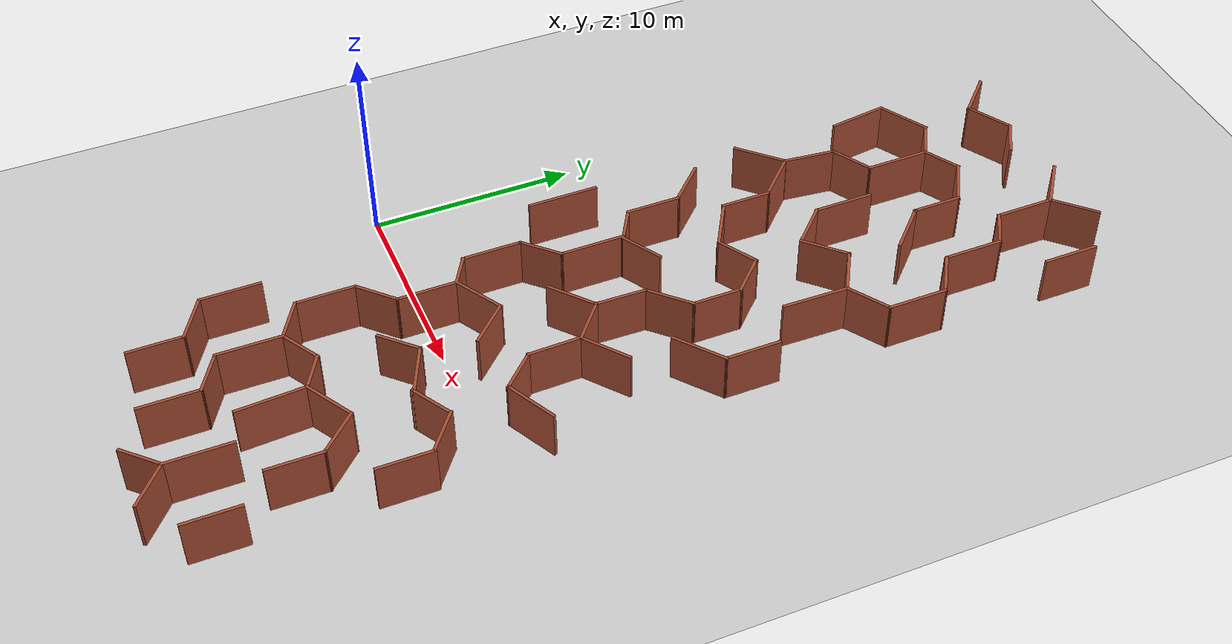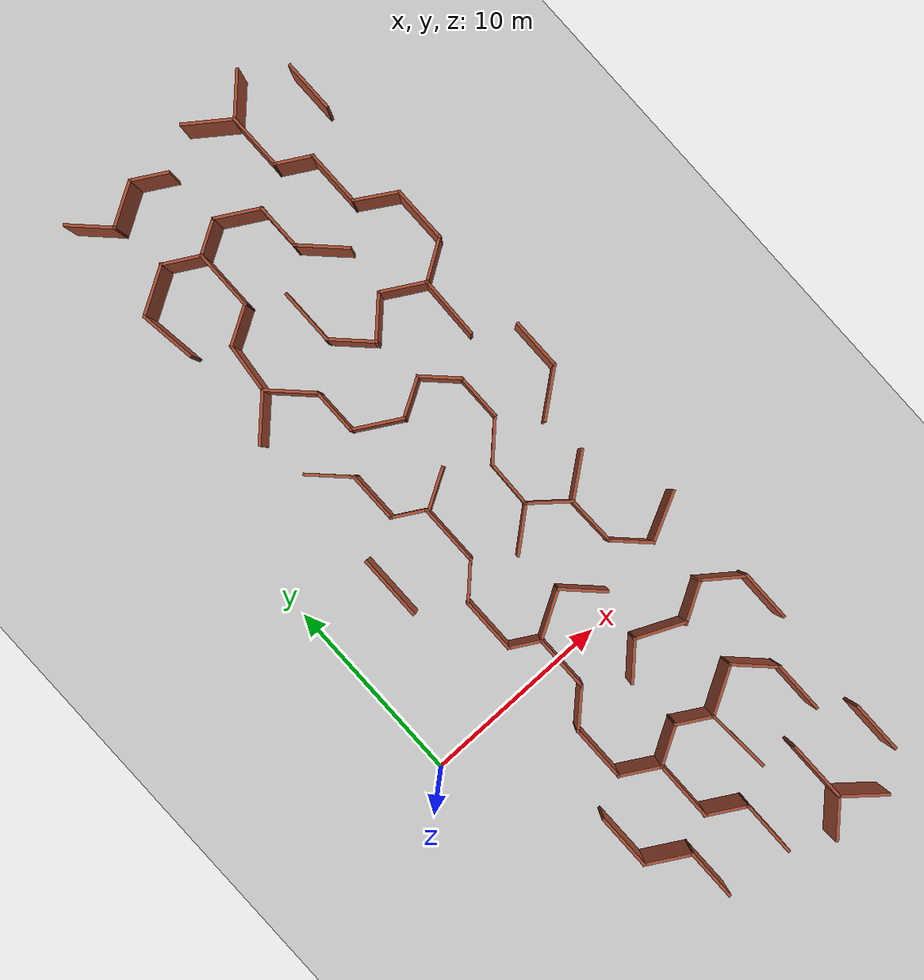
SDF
<sdf version="1.6">
 <world name="default">
  <model name="maze_rect_3">
   <pose>4e-06 -9.9e-05 0 0 -0 1.57001</pose>
   <link name="Wall_154">
    <collision name="Wall_154_Collision">
     <geometry><box><size>2.75 0.15 2.5</size></box></geometry>
     <pose>0 0 1.25 0 -0 0</pose>
    </collision>
    <visual name="Wall_154_Visual">
     <pose>0 0 1.25 0 -0 0</pose>
     <geometry><box><size>2.75 0.15 2.5</size></box></geometry>
     <material>
      <script><uri>file://media/materials/scripts/gazebo.material</uri><name>Gazebo/Bricks</name></script>
      <ambient>1 1 1 1</ambient>
     </material>
     <meta><layer>0</layer></meta>
    </visual>
    <pose>28.4894 -17.2964 0 0 -0 3.14159</pose>
   </link>
   <link name="Wall_158">
    <collision name="Wall_158_Collision">
     <geometry><box><size>3 0.15 2.5</size></box></geometry>
     <pose>0 0 1.25 0 -0 0</pose>
    </collision>
    <visual name="Wall_158_Visual">
     <pose>0 0 1.25 0 -0 0</pose>
     <geometry><box><size>3 0.15 2.5</size></box></geometry>
     <material>
      <script><uri>file://media/materials/scripts/gazebo.material</uri><name>Gazebo/Bricks</name></script>
      <ambient>1 1 1 1</ambient>
     </material>
     <meta><layer>0</layer></meta>
    </visual>
    <pose>20.4527 -17.1394 0 0 -0 3.14159</pose>
   </link>
   <link name="Wall_162">
    <collision name="Wall_162_Collision">
     <geometry><box><size>2.75 0.15 2.5</size></box></geometry>
     <pose>0 0 1.25 0 -0 0</pose>
    </collision>
    <visual name="Wall_162_Visual">
     <pose>0 0 1.25 0 -0 0</pose>
     <geometry><box><size>2.75 0.15 2.5</size></box></geometry>
     <material>
      <script><uri>file://media/materials/scripts/gazebo.material</uri><name>Gazebo/Bricks</name></script>
      <ambient>1 1 1 1</ambient>
     </material>
     <meta><layer>0</layer></meta>
    </visual>
    <pose>12.1578 -17.1394 0 0 -0 3.14159</pose>
   </link>
   <link name="Wall_172">
    <collision name="Wall_172_Collision">
     <geometry><box><size>2.82454 0.15 2.5</size></box></geometry>
     <pose>0 0 1.25 0 -0 0</pose>
    </collision>
    <visual name="Wall_172_Visual">
     <pose>0 0 1.25 0 -0 0</pose>
     <geometry><box><size>2.82454 0.15 2.5</size></box></geometry>
     <material>
      <script><uri>file://media/materials/scripts/gazebo.material</uri><name>Gazebo/Bricks</name></script>
      <ambient>1 1 1 1</ambient>
     </material>
     <meta><layer>0</layer></meta>
    </visual>
    <pose>10.0301 -16.0891 0 0 -0 -0.90341</pose>
   </link>
   <link name="Wall_174">
    <collision name="Wall_174_Collision">
     <geometry><box><size>3 0.15 2.5</size></box></geometry>
     <pose>0 0 1.25 0 -0 0</pose>
    </collision>
    <visual name="Wall_174_Visual">
     <pose>0 0 1.25 0 -0 0</pose>
     <geometry><box><size>3 0.15 2.5</size></box></geometry>
     <material>
      <script><uri>file://media/materials/scripts/gazebo.material</uri><name>Gazebo/Bricks</name></script>
      <ambient>1 1 1 1</ambient>
     </material>
     <meta><layer>0</layer></meta>
    </visual>
    <pose>20.4205 -9.90743 0 0 -0 3.14159</pose>
   </link>
   <link name="Wall_175">
    <collision name="Wall_175_Collision">
     <geometry><box><size>2.5 0.15 2.5</size></box></geometry>
     <pose>0 0 1.25 0 -0 0</pose>
    </collision>
    <visual name="Wall_175_Visual">
     <pose>0 0 1.25 0 -0 0</pose>
     <geometry><box><size>2.5 0.15 2.5</size></box></geometry>
     <material>
      <script><uri>file://media/materials/scripts/gazebo.material</uri><name>Gazebo/Bricks</name></script>
      <ambient>1 1 1 1</ambient>
     </material>
     <meta><layer>0</layer></meta>
    </visual>
    <pose>18.1647 -10.7383 0 0 -0 -2.35619</pose>
   </link>
   <link name="Wall_176">
    <collision name="Wall_176_Collision">
     <geometry><box><size>2.5 0.15 2.5</size></box></geometry>
     <pose>0 0 1.25 0 -0 0</pose>
    </collision>
    <visual name="Wall_176_Visual">
     <pose>0 0 1.25 0 -0 0</pose>
     <geometry><box><size>2.5 0.15 2.5</size></box></geometry>
     <material>
      <script><uri>file://media/materials/scripts/gazebo.material</uri><name>Gazebo/Bricks</name></script>
      <ambient>1 1 1 1</ambient>
     </material>
     <meta><layer>0</layer></meta>
    </visual>
    <pose>18.1647 -12.4 0 0 -0 -0.785398</pose>
   </link>
   <link name="Wall_177">
    <collision name="Wall_177_Collision">
     <geometry><box><size>2.5 0.15 2.5</size></box></geometry>
     <pose>0 0 1.25 0 -0 0</pose>
    </collision>
    <visual name="Wall_177_Visual">
     <pose>0 0 1.25 0 -0 0</pose>
     <geometry><box><size>2.5 0.15 2.5</size></box></geometry>
     <material>
      <script><uri>file://media/materials/scripts/gazebo.material</uri><name>Gazebo/Bricks</name></script>
      <ambient>1 1 1 1</ambient>
     </material>
     <meta><layer>0</layer></meta>
    </visual>
    <pose>18.408 -14.2484 0 0 -0 -2.0944</pose>
   </link>
   <link name="Wall_178">
    <collision name="Wall_178_Collision">
     <geometry><box><size>2.37866 0.15 2.5</size></box></geometry>
     <pose>0 0 1.25 0 -0 0</pose>
    </collision>
    <visual name="Wall_178_Visual">
     <pose>0 0 1.25 0 -0 0</pose>
     <geometry><box><size>2.37866 0.15 2.5</size></box></geometry>
     <material>
      <script><uri>file://media/materials/scripts/gazebo.material</uri><name>Gazebo/Bricks</name></script>
      <ambient>1 1 1 1</ambient>
     </material>
     <meta><layer>0</layer></meta>
    </visual>
    <pose>18.4241 -16.2027 0 0 -0 -0.998415</pose>
   </link>
   <link name="Wall_180">
    <collision name="Wall_180_Collision">
     <geometry><box><size>3.32014 0.15 2.5</size></box></geometry>
     <pose>0 0 1.25 0 -0 0</pose>
    </collision>
    <visual name="Wall_180_Visual">
     <pose>0 0 1.25 0 -0 0</pose>
     <geometry><box><size>3.32014 0.15 2.5</size></box></geometry>
     <material>
      <script><uri>file://media/materials/scripts/gazebo.material</uri><name>Gazebo/Bricks</name></script>
      <ambient>1 1 1 1</ambient>
     </material>
     <meta><layer>0</layer></meta>
    </visual>
    <pose>16.2358 -15.2317 0 0 -0 -0.021629</pose>
   </link>
   <link name="Wall_182">
    <collision name="Wall_182_Collision">
     <geometry><box><size>2.62796 0.15 2.5</size></box></geometry>
     <pose>0 0 1.25 0 -0 0</pose>
    </collision>
    <visual name="Wall_182_Visual">
     <pose>0 0 1.25 0 -0 0</pose>
     <geometry><box><size>2.62796 0.15 2.5</size></box></geometry>
     <material>
      <script><uri>file://media/materials/scripts/gazebo.material</uri><name>Gazebo/Bricks</name></script>
      <ambient>1 1 1 1</ambient>
     </material>
     <meta><layer>0</layer></meta>
    </visual>
    <pose>6.07983 -10.7544 0 0 -0 -0.877305</pose>
   </link>
   <link name="Wall_183">
    <collision name="Wall_183_Collision">
     <geometry><box><size>2.3979 0.15 2.5</size></box></geometry>
     <pose>0 0 1.25 0 -0 0</pose>
    </collision>
    <visual name="Wall_183_Visual">
     <pose>0 0 1.25 0 -0 0</pose>
     <geometry><box><size>2.3979 0.15 2.5</size></box></geometry>
     <material>
      <script><uri>file://media/materials/scripts/gazebo.material</uri><name>Gazebo/Bricks</name></script>
      <ambient>1 1 1 1</ambient>
     </material>
     <meta><layer>0</layer></meta>
    </visual>
    <pose>6.17943 -12.5741 0 0 -0 -2.26074</pose>
   </link>
   <link name="Wall_184">
    <collision name="Wall_184_Collision">
     <geometry><box><size>2.66716 0.15 2.5</size></box></geometry>
     <pose>0 0 1.25 0 -0 0</pose>
    </collision>
    <visual name="Wall_184_Visual">
     <pose>0 0 1.25 0 -0 0</pose>
     <geometry><box><size>2.66716 0.15 2.5</size></box></geometry>
     <material>
      <script><uri>file://media/materials/scripts/gazebo.material</uri><name>Gazebo/Bricks</name></script>
      <ambient>1 1 1 1</ambient>
     </material>
     <meta><layer>0</layer></meta>
    </visual>
    <pose>4.18279 -13.4697 0 0 -0 -3.11875</pose>
   </link>
   <link name="Wall_185">
    <collision name="Wall_185_Collision">
     <geometry><box><size>2.25 0.15 2.5</size></box></geometry>
     <pose>0 0 1.25 0 -0 0</pose>
    </collision>
    <visual name="Wall_185_Visual">
     <pose>0 0 1.25 0 -0 0</pose>
     <geometry><box><size>2.25 0.15 2.5</size></box></geometry>
     <material>
      <script><uri>file://media/materials/scripts/gazebo.material</uri><name>Gazebo/Bricks</name></script>
      <ambient>1 1 1 1</ambient>
     </material>
     <meta><layer>0</layer></meta>
    </visual>
    <pose>2.18208 -14.241 0 0 -0 -2.35619</pose>
   </link>
   <link name="Wall_186">
    <collision name="Wall_186_Collision">
     <geometry><box><size>2.76205 0.15 2.5</size></box></geometry>
     <pose>0 0 1.25 0 -0 0</pose>
    </collision>
    <visual name="Wall_186_Visual">
     <pose>0 0 1.25 0 -0 0</pose>
     <geometry><box><size>2.76205 0.15 2.5</size></box></geometry>
     <material>
      <script><uri>file://media/materials/scripts/gazebo.material</uri><name>Gazebo/Bricks</name></script>
      <ambient>1 1 1 1</ambient>
     </material>
     <meta><layer>0</layer></meta>
    </visual>
    <pose>2.02718 -16.1498 0 0 -0 -1.10416</pose>
   </link>
   <link name="Wall_188">
    <collision name="Wall_188_Collision">
     <geometry><box><size>2.64871 0.15 2.5</size></box></geometry>
     <pose>0 0 1.25 0 -0 0</pose>
    </collision>
    <visual name="Wall_188_Visual">
     <pose>0 0 1.25 0 -0 0</pose>
     <geometry><box><size>2.64871 0.15 2.5</size></box></geometry>
     <material>
      <script><uri>file://media/materials/scripts/gazebo.material</uri><name>Gazebo/Bricks</name></script>
      <ambient>1 1 1 1</ambient>
     </material>
     <meta><layer>0</layer></meta>
    </visual>
    <pose>6.21084 -14.425 0 0 -0 2.23465</pose>
   </link>
   <link name="Wall_190">
    <collision name="Wall_190_Collision">
     <geometry><box><size>2.75 0.15 2.5</size></box></geometry>
     <pose>0 0 1.25 0 -0 0</pose>
    </collision>
    <visual name="Wall_190_Visual">
     <pose>0 0 1.25 0 -0 0</pose>
     <geometry><box><size>2.75 0.15 2.5</size></box></geometry>
     <material>
      <script><uri>file://media/materials/scripts/gazebo.material</uri><name>Gazebo/Bricks</name></script>
      <ambient>1 1 1 1</ambient>
     </material>
     <meta><layer>0</layer></meta>
    </visual>
    <pose>18.3212 -5.11347 0 0 -0 -0.785398</pose>
   </link>
   <link name="Wall_191">
    <collision name="Wall_191_Collision">
     <geometry><box><size>2.75 0.15 2.5</size></box></geometry>
     <pose>0 0 1.25 0 -0 0</pose>
    </collision>
    <visual name="Wall_191_Visual">
     <pose>0 0 1.25 0 -0 0</pose>
     <geometry><box><size>2.75 0.15 2.5</size></box></geometry>
     <material>
      <script><uri>file://media/materials/scripts/gazebo.material</uri><name>Gazebo/Bricks</name></script>
      <ambient>1 1 1 1</ambient>
     </material>
     <meta><layer>0</layer></meta>
    </visual>
    <pose>18.3212 -6.95194 0 0 -0 -2.35619</pose>
   </link>
   <link name="Wall_192">
    <collision name="Wall_192_Collision">
     <geometry><box><size>2.5 0.15 2.5</size></box></geometry>
     <pose>0 0 1.25 0 -0 0</pose>
    </collision>
    <visual name="Wall_192_Visual">
     <pose>0 0 1.25 0 -0 0</pose>
     <geometry><box><size>2.5 0.15 2.5</size></box></geometry>
     <material>
      <script><uri>file://media/materials/scripts/gazebo.material</uri><name>Gazebo/Bricks</name></script>
      <ambient>1 1 1 1</ambient>
     </material>
     <meta><layer>0</layer></meta>
    </visual>
    <pose>16.2269 -7.87118 0 0 -0 3.14159</pose>
   </link>
   <link name="Wall_193">
    <collision name="Wall_193_Collision">
     <geometry><box><size>2.75 0.15 2.5</size></box></geometry>
     <pose>0 0 1.25 0 -0 0</pose>
    </collision>
    <visual name="Wall_193_Visual">
     <pose>0 0 1.25 0 -0 0</pose>
     <geometry><box><size>2.75 0.15 2.5</size></box></geometry>
     <material>
      <script><uri>file://media/materials/scripts/gazebo.material</uri><name>Gazebo/Bricks</name></script>
      <ambient>1 1 1 1</ambient>
     </material>
     <meta><layer>0</layer></meta>
    </visual>
    <pose>14.4019 -8.99702 0 0 -0 -2.0944</pose>
   </link>
   <link name="Wall_194">
    <collision name="Wall_194_Collision">
     <geometry><box><size>2.25 0.15 2.5</size></box></geometry>
     <pose>0 0 1.25 0 -0 0</pose>
    </collision>
    <visual name="Wall_194_Visual">
     <pose>0 0 1.25 0 -0 0</pose>
     <geometry><box><size>2.25 0.15 2.5</size></box></geometry>
     <material>
      <script><uri>file://media/materials/scripts/gazebo.material</uri><name>Gazebo/Bricks</name></script>
      <ambient>1 1 1 1</ambient>
     </material>
     <meta><layer>0</layer></meta>
    </visual>
    <pose>14.2769 -11.0322 0 0 -0 -1.0472</pose>
   </link>
   <link name="Wall_195">
    <collision name="Wall_195_Collision">
     <geometry><box><size>2.25 0.15 2.5</size></box></geometry>
     <pose>0 0 1.25 0 -0 0</pose>
    </collision>
    <visual name="Wall_195_Visual">
     <pose>0 0 1.25 0 -0 0</pose>
     <geometry><box><size>2.25 0.15 2.5</size></box></geometry>
     <material>
      <script><uri>file://media/materials/scripts/gazebo.material</uri><name>Gazebo/Bricks</name></script>
      <ambient>1 1 1 1</ambient>
     </material>
     <meta><layer>0</layer></meta>
    </visual>
    <pose>14.0595 -12.684 0 0 -0 -2.35619</pose>
   </link>
   <link name="Wall_196">
    <collision name="Wall_196_Collision">
     <geometry><box><size>2.5 0.15 2.5</size></box></geometry>
     <pose>0 0 1.25 0 -0 0</pose>
    </collision>
    <visual name="Wall_196_Visual">
     <pose>0 0 1.25 0 -0 0</pose>
     <geometry><box><size>2.5 0.15 2.5</size></box></geometry>
     <material>
      <script><uri>file://media/materials/scripts/gazebo.material</uri><name>Gazebo/Bricks</name></script>
      <ambient>1 1 1 1</ambient>
     </material>
     <meta><layer>0</layer></meta>
    </visual>
    <pose>12.142 -13.4264 0 0 -0 3.14159</pose>
   </link>
   <link name="Wall_197">
    <collision name="Wall_197_Collision">
     <geometry><box><size>2.5 0.15 2.5</size></box></geometry>
     <pose>0 0 1.25 0 -0 0</pose>
    </collision>
    <visual name="Wall_197_Visual">
     <pose>0 0 1.25 0 -0 0</pose>
     <geometry><box><size>2.5 0.15 2.5</size></box></geometry>
     <material>
      <script><uri>file://media/materials/scripts/gazebo.material</uri><name>Gazebo/Bricks</name></script>
      <ambient>1 1 1 1</ambient>
     </material>
     <meta><layer>0</layer></meta>
    </visual>
    <pose>10.1362 -12.5956 0 0 -0 2.35619</pose>
   </link>
   <link name="Wall_198">
    <collision name="Wall_198_Collision">
     <geometry><box><size>2.58418 0.15 2.5</size></box></geometry>
     <pose>0 0 1.25 0 -0 0</pose>
    </collision>
    <visual name="Wall_198_Visual">
     <pose>0 0 1.25 0 -0 0</pose>
     <geometry><box><size>2.58418 0.15 2.5</size></box></geometry>
     <material>
      <script><uri>file://media/materials/scripts/gazebo.material</uri><name>Gazebo/Bricks</name></script>
      <ambient>1 1 1 1</ambient>
     </material>
     <meta><layer>0</layer></meta>
    </visual>
    <pose>8.08856 -11.736 0 0 -0 3.11797</pose>
   </link>
   <link name="Wall_2">
    <collision name="Wall_2_Collision">
     <geometry><box><size>2.75 0.15 2.5</size></box></geometry>
     <pose>0 0 1.25 0 -0 0</pose>
    </collision>
    <visual name="Wall_2_Visual">
     <pose>0 0 1.25 0 -0 0</pose>
     <geometry><box><size>2.75 0.15 2.5</size></box></geometry>
     <material>
      <script><uri>file://media/materials/scripts/gazebo.material</uri><name>Gazebo/Bricks</name></script>
      <ambient>1 1 1 1</ambient>
     </material>
     <meta><layer>0</layer></meta>
    </visual>
    <pose>-3.97506 -17.2253 0 0 -0 3.14159</pose>
   </link>
   <link name="Wall_200">
    <collision name="Wall_200_Collision">
     <geometry><box><size>2.75 0.15 2.5</size></box></geometry>
     <pose>0 0 1.25 0 -0 0</pose>
    </collision>
    <visual name="Wall_200_Visual">
     <pose>0 0 1.25 0 -0 0</pose>
     <geometry><box><size>2.75 0.15 2.5</size></box></geometry>
     <material>
      <script><uri>file://media/materials/scripts/gazebo.material</uri><name>Gazebo/Bricks</name></script>
      <ambient>1 1 1 1</ambient>
     </material>
     <meta><layer>0</layer></meta>
    </visual>
    <pose>22.3945 -12.6912 0 0 -0 0.785398</pose>
   </link>
   <link name="Wall_201">
    <collision name="Wall_201_Collision">
     <geometry><box><size>2.5 0.15 2.5</size></box></geometry>
     <pose>0 0 1.25 0 -0 0</pose>
    </collision>
    <visual name="Wall_201_Visual">
     <pose>0 0 1.25 0 -0 0</pose>
     <geometry><box><size>2.5 0.15 2.5</size></box></geometry>
     <material>
      <script><uri>file://media/materials/scripts/gazebo.material</uri><name>Gazebo/Bricks</name></script>
      <ambient>1 1 1 1</ambient>
     </material>
     <meta><layer>0</layer></meta>
    </visual>
    <pose>24.4887 -11.772 0 0 -0 0</pose>
   </link>
   <link name="Wall_202">
    <collision name="Wall_202_Collision">
     <geometry><box><size>2.5 0.15 2.5</size></box></geometry>
     <pose>0 0 1.25 0 -0 0</pose>
    </collision>
    <visual name="Wall_202_Visual">
     <pose>0 0 1.25 0 -0 0</pose>
     <geometry><box><size>2.5 0.15 2.5</size></box></geometry>
     <material>
      <script><uri>file://media/materials/scripts/gazebo.material</uri><name>Gazebo/Bricks</name></script>
      <ambient>1 1 1 1</ambient>
     </material>
     <meta><layer>0</layer></meta>
    </visual>
    <pose>26.2512 -10.7544 0 0 -0 1.0472</pose>
   </link>
   <link name="Wall_203">
    <collision name="Wall_203_Collision">
     <geometry><box><size>2 0.15 2.5</size></box></geometry>
     <pose>0 0 1.25 0 -0 0</pose>
    </collision>
    <visual name="Wall_203_Visual">
     <pose>0 0 1.25 0 -0 0</pose>
     <geometry><box><size>2 0.15 2.5</size></box></geometry>
     <material>
      <script><uri>file://media/materials/scripts/gazebo.material</uri><name>Gazebo/Bricks</name></script>
      <ambient>1 1 1 1</ambient>
     </material>
     <meta><layer>0</layer></meta>
    </visual>
    <pose>26.3762 -8.93572 0 0 -0 2.0944</pose>
   </link>
   <link name="Wall_204">
    <collision name="Wall_204_Collision">
     <geometry><box><size>3.25 0.15 2.5</size></box></geometry>
     <pose>0 0 1.25 0 -0 0</pose>
    </collision>
    <visual name="Wall_204_Visual">
     <pose>0 0 1.25 0 -0 0</pose>
     <geometry><box><size>3.25 0.15 2.5</size></box></geometry>
     <material>
      <script><uri>file://media/materials/scripts/gazebo.material</uri><name>Gazebo/Bricks</name></script>
      <ambient>1 1 1 1</ambient>
     </material>
     <meta><layer>0</layer></meta>
    </visual>
    <pose>24.3637 -8.13464 0 0 -0 3.14159</pose>
   </link>
   <link name="Wall_205">
    <collision name="Wall_205_Collision">
     <geometry><box><size>2.25 0.15 2.5</size></box></geometry>
     <pose>0 0 1.25 0 -0 0</pose>
    </collision>
    <visual name="Wall_205_Visual">
     <pose>0 0 1.25 0 -0 0</pose>
     <geometry><box><size>2.25 0.15 2.5</size></box></geometry>
     <material>
      <script><uri>file://media/materials/scripts/gazebo.material</uri><name>Gazebo/Bricks</name></script>
      <ambient>1 1 1 1</ambient>
     </material>
     <meta><layer>0</layer></meta>
    </visual>
    <pose>22.2887 -7.22532 0 0 -0 2.0944</pose>
   </link>
   <link name="Wall_206">
    <collision name="Wall_206_Collision">
     <geometry><box><size>2.68915 0.15 2.5</size></box></geometry>
     <pose>0 0 1.25 0 -0 0</pose>
    </collision>
    <visual name="Wall_206_Visual">
     <pose>0 0 1.25 0 -0 0</pose>
     <geometry><box><size>2.68915 0.15 2.5</size></box></geometry>
     <material>
      <script><uri>file://media/materials/scripts/gazebo.material</uri><name>Gazebo/Bricks</name></script>
      <ambient>1 1 1 1</ambient>
     </material>
     <meta><layer>0</layer></meta>
    </visual>
    <pose>20.5021 -6.17435 0 0 -0 3.02979</pose>
   </link>
   <link name="Wall_209">
    <collision name="Wall_209_Collision">
     <geometry><box><size>2.5 0.15 2.5</size></box></geometry>
     <pose>0 0 1.25 0 -0 0</pose>
    </collision>
    <visual name="Wall_209_Visual">
     <pose>0 0 1.25 0 -0 0</pose>
     <geometry><box><size>2.5 0.15 2.5</size></box></geometry>
     <material>
      <script><uri>file://media/materials/scripts/gazebo.material</uri><name>Gazebo/Bricks</name></script>
      <ambient>1 1 1 1</ambient>
     </material>
     <meta><layer>0</layer></meta>
    </visual>
    <pose>30.4904 -14.4724 0 0 -0 2.35619</pose>
   </link>
   <link name="Wall_210">
    <collision name="Wall_210_Collision">
     <geometry><box><size>3 0.15 2.5</size></box></geometry>
     <pose>0 0 1.25 0 -0 0</pose>
    </collision>
    <visual name="Wall_210_Visual">
     <pose>0 0 1.25 0 -0 0</pose>
     <geometry><box><size>3 0.15 2.5</size></box></geometry>
     <material>
      <script><uri>file://media/materials/scripts/gazebo.material</uri><name>Gazebo/Bricks</name></script>
      <ambient>1 1 1 1</ambient>
     </material>
     <meta><layer>0</layer></meta>
    </visual>
    <pose>28.2345 -13.6415 0 0 -0 3.14159</pose>
   </link>
   <link name="Wall_211">
    <collision name="Wall_211_Collision">
     <geometry><box><size>2 0.15 2.5</size></box></geometry>
     <pose>0 0 1.25 0 -0 0</pose>
    </collision>
    <visual name="Wall_211_Visual">
     <pose>0 0 1.25 0 -0 0</pose>
     <geometry><box><size>2 0.15 2.5</size></box></geometry>
     <material>
      <script><uri>file://media/materials/scripts/gazebo.material</uri><name>Gazebo/Bricks</name></script>
      <ambient>1 1 1 1</ambient>
     </material>
     <meta><layer>0</layer></meta>
    </visual>
    <pose>26.347 -14.4426 0 0 -0 -2.0944</pose>
   </link>
   <link name="Wall_212">
    <collision name="Wall_212_Collision">
     <geometry><box><size>3 0.15 2.5</size></box></geometry>
     <pose>0 0 1.25 0 -0 0</pose>
    </collision>
    <visual name="Wall_212_Visual">
     <pose>0 0 1.25 0 -0 0</pose>
     <geometry><box><size>3 0.15 2.5</size></box></geometry>
     <material>
      <script><uri>file://media/materials/scripts/gazebo.material</uri><name>Gazebo/Bricks</name></script>
      <ambient>1 1 1 1</ambient>
     </material>
     <meta><layer>0</layer></meta>
    </visual>
    <pose>24.4595 -15.2437 0 0 -0 3.14159</pose>
   </link>
   <link name="Wall_213">
    <collision name="Wall_213_Collision">
     <geometry><box><size>2.37087 0.15 2.5</size></box></geometry>
     <pose>0 0 1.25 0 -0 0</pose>
    </collision>
    <visual name="Wall_213_Visual">
     <pose>0 0 1.25 0 -0 0</pose>
     <geometry><box><size>2.37087 0.15 2.5</size></box></geometry>
     <material>
      <script><uri>file://media/materials/scripts/gazebo.material</uri><name>Gazebo/Bricks</name></script>
      <ambient>1 1 1 1</ambient>
     </material>
     <meta><layer>0</layer></meta>
    </visual>
    <pose>22.4561 -16.1915 0 0 -0 -2.11872</pose>
   </link>
   <link name="Wall_227">
    <collision name="Wall_227_Collision">
     <geometry><box><size>2.68494 0.15 2.5</size></box></geometry>
     <pose>0 0 1.25 0 -0 0</pose>
    </collision>
    <visual name="Wall_227_Visual">
     <pose>0 0 1.25 0 -0 0</pose>
     <geometry><box><size>2.68494 0.15 2.5</size></box></geometry>
     <material>
      <script><uri>file://media/materials/scripts/gazebo.material</uri><name>Gazebo/Bricks</name></script>
      <ambient>1 1 1 1</ambient>
     </material>
     <meta><layer>0</layer></meta>
    </visual>
    <pose>30.411 -12.6209 0 0 -0 -2.20547</pose>
   </link>
   <link name="Wall_229">
    <collision name="Wall_229_Collision">
     <geometry><box><size>2.5 0.15 2.5</size></box></geometry>
     <pose>0 0 1.25 0 -0 0</pose>
    </collision>
    <visual name="Wall_229_Visual">
     <pose>0 0 1.25 0 -0 0</pose>
     <geometry><box><size>2.5 0.15 2.5</size></box></geometry>
     <material>
      <script><uri>file://media/materials/scripts/gazebo.material</uri><name>Gazebo/Bricks</name></script>
      <ambient>1 1 1 1</ambient>
     </material>
     <meta><layer>0</layer></meta>
    </visual>
    <pose>30.4838 -5.13088 0 0 -0 -2.35619</pose>
   </link>
   <link name="Wall_230">
    <collision name="Wall_230_Collision">
     <geometry><box><size>2.5 0.15 2.5</size></box></geometry>
     <pose>0 0 1.25 0 -0 0</pose>
    </collision>
    <visual name="Wall_230_Visual">
     <pose>0 0 1.25 0 -0 0</pose>
     <geometry><box><size>2.5 0.15 2.5</size></box></geometry>
     <material>
      <script><uri>file://media/materials/scripts/gazebo.material</uri><name>Gazebo/Bricks</name></script>
      <ambient>1 1 1 1</ambient>
     </material>
     <meta><layer>0</layer></meta>
    </visual>
    <pose>30.2404 -6.97931 0 0 -0 -1.0472</pose>
   </link>
   <link name="Wall_231">
    <collision name="Wall_231_Collision">
     <geometry><box><size>2 0.15 2.5</size></box></geometry>
     <pose>0 0 1.25 0 -0 0</pose>
    </collision>
    <visual name="Wall_231_Visual">
     <pose>0 0 1.25 0 -0 0</pose>
     <geometry><box><size>2 0.15 2.5</size></box></geometry>
     <material>
      <script><uri>file://media/materials/scripts/gazebo.material</uri><name>Gazebo/Bricks</name></script>
      <ambient>1 1 1 1</ambient>
     </material>
     <meta><layer>0</layer></meta>
    </visual>
    <pose>30.3654 -8.79796 0 0 -0 -2.0944</pose>
   </link>
   <link name="Wall_274">
    <collision name="Wall_274_Collision">
     <geometry><box><size>2.75 0.15 2.5</size></box></geometry>
     <pose>0 0 1.25 0 -0 0</pose>
    </collision>
    <visual name="Wall_274_Visual">
     <pose>0 0 1.25 0 -0 0</pose>
     <geometry><box><size>2.75 0.15 2.5</size></box></geometry>
     <material>
      <script><uri>file://media/materials/scripts/gazebo.material</uri><name>Gazebo/Bricks</name></script>
      <ambient>1 1 1 1</ambient>
     </material>
     <meta><layer>0</layer></meta>
    </visual>
    <pose>26.2218 -5.31751 0 0 -0 -1.0472</pose>
   </link>
   <link name="Wall_275">
    <collision name="Wall_275_Collision">
     <geometry><box><size>2.09381 0.15 2.5</size></box></geometry>
     <pose>0 0 1.25 0 -0 0</pose>
    </collision>
    <visual name="Wall_275_Visual">
     <pose>0 0 1.25 0 -0 0</pose>
     <geometry><box><size>2.09381 0.15 2.5</size></box></geometry>
     <material>
      <script><uri>file://media/materials/scripts/gazebo.material</uri><name>Gazebo/Bricks</name></script>
      <ambient>1 1 1 1</ambient>
     </material>
     <meta><layer>0</layer></meta>
    </visual>
    <pose>26.3928 -7.28899 0 0 -0 -2.0862</pose>
   </link>
   <link name="Wall_277">
    <collision name="Wall_277_Collision">
     <geometry><box><size>3.00143 0.15 2.5</size></box></geometry>
     <pose>0 0 1.25 0 -0 0</pose>
    </collision>
    <visual name="Wall_277_Visual">
     <pose>0 0 1.25 0 -0 0</pose>
     <geometry><box><size>3.00143 0.15 2.5</size></box></geometry>
     <material>
      <script><uri>file://media/materials/scripts/gazebo.material</uri><name>Gazebo/Bricks</name></script>
      <ambient>1 1 1 1</ambient>
     </material>
     <meta><layer>0</layer></meta>
    </visual>
    <pose>24.1583 -4.3781 0 0 -0 0.131135</pose>
   </link>
   <link name="Wall_380">
    <collision name="Wall_380_Collision">
     <geometry><box><size>2.25 0.15 2.5</size></box></geometry>
     <pose>0 0 1.25 0 -0 0</pose>
    </collision>
    <visual name="Wall_380_Visual">
     <pose>0 0 1.25 0 -0 0</pose>
     <geometry><box><size>2.25 0.15 2.5</size></box></geometry>
     <material>
      <script><uri>file://media/materials/scripts/gazebo.material</uri><name>Gazebo/Bricks</name></script>
      <ambient>1 1 1 1</ambient>
     </material>
     <meta><layer>0</layer></meta>
    </visual>
    <pose>10.2675 -9.00997 0 0 -0 2.0944</pose>
   </link>
   <link name="Wall_381">
    <collision name="Wall_381_Collision">
     <geometry><box><size>2 0.15 2.5</size></box></geometry>
     <pose>0 0 1.25 0 -0 0</pose>
    </collision>
    <visual name="Wall_381_Visual">
     <pose>0 0 1.25 0 -0 0</pose>
     <geometry><box><size>2 0.15 2.5</size></box></geometry>
     <material>
      <script><uri>file://media/materials/scripts/gazebo.material</uri><name>Gazebo/Bricks</name></script>
      <ambient>1 1 1 1</ambient>
     </material>
     <meta><layer>0</layer></meta>
    </visual>
    <pose>10.205 -7.29957 0 0 -0 1.0472</pose>
   </link>
   <link name="Wall_382">
    <collision name="Wall_382_Collision">
     <geometry><box><size>2.75 0.15 2.5</size></box></geometry>
     <pose>0 0 1.25 0 -0 0</pose>
    </collision>
    <visual name="Wall_382_Visual">
     <pose>0 0 1.25 0 -0 0</pose>
     <geometry><box><size>2.75 0.15 2.5</size></box></geometry>
     <material>
      <script><uri>file://media/materials/scripts/gazebo.material</uri><name>Gazebo/Bricks</name></script>
      <ambient>1 1 1 1</ambient>
     </material>
     <meta><layer>0</layer></meta>
    </visual>
    <pose>11.9675 -6.4985 0 0 -0 0</pose>
   </link>
   <link name="Wall_383">
    <collision name="Wall_383_Collision">
     <geometry><box><size>2.5 0.15 2.5</size></box></geometry>
     <pose>0 0 1.25 0 -0 0</pose>
    </collision>
    <visual name="Wall_383_Visual">
     <pose>0 0 1.25 0 -0 0</pose>
     <geometry><box><size>2.5 0.15 2.5</size></box></geometry>
     <material>
      <script><uri>file://media/materials/scripts/gazebo.material</uri><name>Gazebo/Bricks</name></script>
      <ambient>1 1 1 1</ambient>
     </material>
     <meta><layer>0</layer></meta>
    </visual>
    <pose>14.0984 -5.66765 0 0 -0 0.785398</pose>
   </link>
   <link name="Wall_388">
    <collision name="Wall_388_Collision">
     <geometry><box><size>2.5 0.15 2.5</size></box></geometry>
     <pose>0 0 1.25 0 -0 0</pose>
    </collision>
    <visual name="Wall_388_Visual">
     <pose>0 0 1.25 0 -0 0</pose>
     <geometry><box><size>2.5 0.15 2.5</size></box></geometry>
     <material>
      <script><uri>file://media/materials/scripts/gazebo.material</uri><name>Gazebo/Bricks</name></script>
      <ambient>1 1 1 1</ambient>
     </material>
     <meta><layer>0</layer></meta>
    </visual>
    <pose>2.01144 -10.9743 0 0 -0 0.785398</pose>
   </link>
   <link name="Wall_389">
    <collision name="Wall_389_Collision">
     <geometry><box><size>2.75 0.15 2.5</size></box></geometry>
     <pose>0 0 1.25 0 -0 0</pose>
    </collision>
    <visual name="Wall_389_Visual">
     <pose>0 0 1.25 0 -0 0</pose>
     <geometry><box><size>2.75 0.15 2.5</size></box></geometry>
     <material>
      <script><uri>file://media/materials/scripts/gazebo.material</uri><name>Gazebo/Bricks</name></script>
      <ambient>1 1 1 1</ambient>
     </material>
     <meta><layer>0</layer></meta>
    </visual>
    <pose>2.1923 -9.01765 0 0 -0 2.0944</pose>
   </link>
   <link name="Wall_390">
    <collision name="Wall_390_Collision">
     <geometry><box><size>1.75 0.15 2.5</size></box></geometry>
     <pose>0 0 1.25 0 -0 0</pose>
    </collision>
    <visual name="Wall_390_Visual">
     <pose>0 0 1.25 0 -0 0</pose>
     <geometry><box><size>1.75 0.15 2.5</size></box></geometry>
     <material>
      <script><uri>file://media/materials/scripts/gazebo.material</uri><name>Gazebo/Bricks</name></script>
      <ambient>1 1 1 1</ambient>
     </material>
     <meta><layer>0</layer></meta>
    </visual>
    <pose>1.9423 -7.19899 0 0 -0 1.0472</pose>
   </link>
   <link name="Wall_391">
    <collision name="Wall_391_Collision">
     <geometry><box><size>3 0.15 2.5</size></box></geometry>
     <pose>0 0 1.25 0 -0 0</pose>
    </collision>
    <visual name="Wall_391_Visual">
     <pose>0 0 1.25 0 -0 0</pose>
     <geometry><box><size>3 0.15 2.5</size></box></geometry>
     <material>
      <script><uri>file://media/materials/scripts/gazebo.material</uri><name>Gazebo/Bricks</name></script>
      <ambient>1 1 1 1</ambient>
     </material>
     <meta><layer>0</layer></meta>
    </visual>
    <pose>3.76729 -6.50617 0 0 -0 0</pose>
   </link>
   <link name="Wall_392">
    <collision name="Wall_392_Collision">
     <geometry><box><size>2.25 0.15 2.5</size></box></geometry>
     <pose>0 0 1.25 0 -0 0</pose>
    </collision>
    <visual name="Wall_392_Visual">
     <pose>0 0 1.25 0 -0 0</pose>
     <geometry><box><size>2.25 0.15 2.5</size></box></geometry>
     <material>
      <script><uri>file://media/materials/scripts/gazebo.material</uri><name>Gazebo/Bricks</name></script>
      <ambient>1 1 1 1</ambient>
     </material>
     <meta><layer>0</layer></meta>
    </visual>
    <pose>5.93476 -7.24864 0 0 -0 -0.785398</pose>
   </link>
   <link name="Wall_393">
    <collision name="Wall_393_Collision">
     <geometry><box><size>3.25 0.15 2.5</size></box></geometry>
     <pose>0 0 1.25 0 -0 0</pose>
    </collision>
    <visual name="Wall_393_Visual">
     <pose>0 0 1.25 0 -0 0</pose>
     <geometry><box><size>3.25 0.15 2.5</size></box></geometry>
     <material>
      <script><uri>file://media/materials/scripts/gazebo.material</uri><name>Gazebo/Bricks</name></script>
      <ambient>1 1 1 1</ambient>
     </material>
     <meta><layer>0</layer></meta>
    </visual>
    <pose>8.22722 -7.9911 0 0 -0 0</pose>
   </link>
   <link name="Wall_436">
    <collision name="Wall_436_Collision">
     <geometry><box><size>2.25 0.15 2.5</size></box></geometry>
     <pose>0 0 1.25 0 -0 0</pose>
    </collision>
    <visual name="Wall_436_Visual">
     <pose>0 0 1.25 0 -0 0</pose>
     <geometry><box><size>2.25 0.15 2.5</size></box></geometry>
     <material>
      <script><uri>file://media/materials/scripts/gazebo.material</uri><name>Gazebo/Bricks</name></script>
      <ambient>1 1 1 1</ambient>
     </material>
     <meta><layer>0</layer></meta>
    </visual>
    <pose>-2.08521 -10.5143 0 0 -0 -0.785398</pose>
   </link>
   <link name="Wall_437">
    <collision name="Wall_437_Collision">
     <geometry><box><size>2.71683 0.15 2.5</size></box></geometry>
     <pose>0 0 1.25 0 -0 0</pose>
    </collision>
    <visual name="Wall_437_Visual">
     <pose>0 0 1.25 0 -0 0</pose>
     <geometry><box><size>2.71683 0.15 2.5</size></box></geometry>
     <material>
      <script><uri>file://media/materials/scripts/gazebo.material</uri><name>Gazebo/Bricks</name></script>
      <ambient>1 1 1 1</ambient>
     </material>
     <meta><layer>0</layer></meta>
    </visual>
    <pose>-1.86907 -12.4273 0 0 -0 -1.99335</pose>
   </link>
   <link name="Wall_438">
    <collision name="Wall_438_Collision">
     <geometry><box><size>2.25 0.15 2.5</size></box></geometry>
     <pose>0 0 1.25 0 -0 0</pose>
    </collision>
    <visual name="Wall_438_Visual">
     <pose>0 0 1.25 0 -0 0</pose>
     <geometry><box><size>2.25 0.15 2.5</size></box></geometry>
     <material>
      <script><uri>file://media/materials/scripts/gazebo.material</uri><name>Gazebo/Bricks</name></script>
      <ambient>1 1 1 1</ambient>
     </material>
     <meta><layer>0</layer></meta>
    </visual>
    <pose>-1.93157 -14.446 0 0 -0 -1.0472</pose>
   </link>
   <link name="Wall_439">
    <collision name="Wall_439_Collision">
     <geometry><box><size>2.34599 0.15 2.5</size></box></geometry>
     <pose>0 0 1.25 0 -0 0</pose>
    </collision>
    <visual name="Wall_439_Visual">
     <pose>0 0 1.25 0 -0 0</pose>
     <geometry><box><size>2.34599 0.15 2.5</size></box></geometry>
     <material>
      <script><uri>file://media/materials/scripts/gazebo.material</uri><name>Gazebo/Bricks</name></script>
      <ambient>1 1 1 1</ambient>
     </material>
     <meta><layer>0</layer></meta>
    </visual>
    <pose>-2.01023 -16.2903 0 0 -0 -2.22119</pose>
   </link>
   <link name="Wall_441">
    <collision name="Wall_441_Collision">
     <geometry><box><size>2.75 0.15 2.5</size></box></geometry>
     <pose>0 0 1.25 0 -0 0</pose>
    </collision>
    <visual name="Wall_441_Visual">
     <pose>0 0 1.25 0 -0 0</pose>
     <geometry><box><size>2.75 0.15 2.5</size></box></geometry>
     <material>
      <script><uri>file://media/materials/scripts/gazebo.material</uri><name>Gazebo/Bricks</name></script>
      <ambient>1 1 1 1</ambient>
     </material>
     <meta><layer>0</layer></meta>
    </visual>
    <pose>-8.24597 -15.485 0 0 -0 0</pose>
   </link>
   <link name="Wall_442">
    <collision name="Wall_442_Collision">
     <geometry><box><size>2.5 0.15 2.5</size></box></geometry>
     <pose>0 0 1.25 0 -0 0</pose>
    </collision>
    <visual name="Wall_442_Visual">
     <pose>0 0 1.25 0 -0 0</pose>
     <geometry><box><size>2.5 0.15 2.5</size></box></geometry>
     <material>
      <script><uri>file://media/materials/scripts/gazebo.material</uri><name>Gazebo/Bricks</name></script>
      <ambient>1 1 1 1</ambient>
     </material>
     <meta><layer>0</layer></meta>
    </visual>
    <pose>-6.11512 -14.6542 0 0 -0 0.785398</pose>
   </link>
   <link name="Wall_443">
    <collision name="Wall_443_Collision">
     <geometry><box><size>2.75 0.15 2.5</size></box></geometry>
     <pose>0 0 1.25 0 -0 0</pose>
    </collision>
    <visual name="Wall_443_Visual">
     <pose>0 0 1.25 0 -0 0</pose>
     <geometry><box><size>2.75 0.15 2.5</size></box></geometry>
     <material>
      <script><uri>file://media/materials/scripts/gazebo.material</uri><name>Gazebo/Bricks</name></script>
      <ambient>1 1 1 1</ambient>
     </material>
     <meta><layer>0</layer></meta>
    </visual>
    <pose>-5.93427 -12.6975 0 0 -0 2.0944</pose>
   </link>
   <link name="Wall_444">
    <collision name="Wall_444_Collision">
     <geometry><box><size>2 0.15 2.5</size></box></geometry>
     <pose>0 0 1.25 0 -0 0</pose>
    </collision>
    <visual name="Wall_444_Visual">
     <pose>0 0 1.25 0 -0 0</pose>
     <geometry><box><size>2 0.15 2.5</size></box></geometry>
     <material>
      <script><uri>file://media/materials/scripts/gazebo.material</uri><name>Gazebo/Bricks</name></script>
      <ambient>1 1 1 1</ambient>
     </material>
     <meta><layer>0</layer></meta>
    </visual>
    <pose>-6.12177 -10.7706 0 0 -0 1.0472</pose>
   </link>
   <link name="Wall_445">
    <collision name="Wall_445_Collision">
     <geometry><box><size>2.25 0.15 2.5</size></box></geometry>
     <pose>0 0 1.25 0 -0 0</pose>
    </collision>
    <visual name="Wall_445_Visual">
     <pose>0 0 1.25 0 -0 0</pose>
     <geometry><box><size>2.25 0.15 2.5</size></box></geometry>
     <material>
      <script><uri>file://media/materials/scripts/gazebo.material</uri><name>Gazebo/Bricks</name></script>
      <ambient>1 1 1 1</ambient>
     </material>
     <meta><layer>0</layer></meta>
    </visual>
    <pose>-6.18427 -9.06018 0 0 -0 2.0944</pose>
   </link>
   <link name="Wall_446">
    <collision name="Wall_446_Collision">
     <geometry><box><size>2.25 0.15 2.5</size></box></geometry>
     <pose>0 0 1.25 0 -0 0</pose>
    </collision>
    <visual name="Wall_446_Visual">
     <pose>0 0 1.25 0 -0 0</pose>
     <geometry><box><size>2.25 0.15 2.5</size></box></geometry>
     <material>
      <script><uri>file://media/materials/scripts/gazebo.material</uri><name>Gazebo/Bricks</name></script>
      <ambient>1 1 1 1</ambient>
     </material>
     <meta><layer>0</layer></meta>
    </visual>
    <pose>-6.18427 -7.24153 0 0 -0 1.0472</pose>
   </link>
   <link name="Wall_447">
    <collision name="Wall_447_Collision">
     <geometry><box><size>3 0.15 2.5</size></box></geometry>
     <pose>0 0 1.25 0 -0 0</pose>
    </collision>
    <visual name="Wall_447_Visual">
     <pose>0 0 1.25 0 -0 0</pose>
     <geometry><box><size>3 0.15 2.5</size></box></geometry>
     <material>
      <script><uri>file://media/materials/scripts/gazebo.material</uri><name>Gazebo/Bricks</name></script>
      <ambient>1 1 1 1</ambient>
     </material>
     <meta><layer>0</layer></meta>
    </visual>
    <pose>-4.23427 -6.33221 0 0 -0 0</pose>
   </link>
   <link name="Wall_448">
    <collision name="Wall_448_Collision">
     <geometry><box><size>2.31497 0.15 2.5</size></box></geometry>
     <pose>0 0 1.25 0 -0 0</pose>
    </collision>
    <visual name="Wall_448_Visual">
     <pose>0 0 1.25 0 -0 0</pose>
     <geometry><box><size>2.31497 0.15 2.5</size></box></geometry>
     <material>
      <script><uri>file://media/materials/scripts/gazebo.material</uri><name>Gazebo/Bricks</name></script>
      <ambient>1 1 1 1</ambient>
     </material>
     <meta><layer>0</layer></meta>
    </visual>
    <pose>-2.05849 -7.11201 0 0 -0 -0.804357</pose>
   </link>
   <link name="Wall_449">
    <collision name="Wall_449_Collision">
     <geometry><box><size>3 0.15 2.5</size></box></geometry>
     <pose>0 0 1.25 0 -0 0</pose>
    </collision>
    <visual name="Wall_449_Visual">
     <pose>0 0 1.25 0 -0 0</pose>
     <geometry><box><size>3 0.15 2.5</size></box></geometry>
     <material>
      <script><uri>file://media/materials/scripts/gazebo.material</uri><name>Gazebo/Bricks</name></script>
      <ambient>1 1 1 1</ambient>
     </material>
     <meta><layer>0</layer></meta>
    </visual>
    <pose>0.117295 -7.89181 0 0 -0 0</pose>
   </link>
   <link name="Wall_451">
    <collision name="Wall_451_Collision">
     <geometry><box><size>3.25 0.15 2.5</size></box></geometry>
     <pose>0 0 1.25 0 -0 0</pose>
    </collision>
    <visual name="Wall_451_Visual">
     <pose>0 0 1.25 0 -0 0</pose>
     <geometry><box><size>3.25 0.15 2.5</size></box></geometry>
     <material>
      <script><uri>file://media/materials/scripts/gazebo.material</uri><name>Gazebo/Bricks</name></script>
      <ambient>1 1 1 1</ambient>
     </material>
     <meta><layer>0</layer></meta>
    </visual>
    <pose>-11.8366 -13.4748 0 0 -0 3.14159</pose>
   </link>
   <link name="Wall_452">
    <collision name="Wall_452_Collision">
     <geometry><box><size>2.25 0.15 2.5</size></box></geometry>
     <pose>0 0 1.25 0 -0 0</pose>
    </collision>
    <visual name="Wall_452_Visual">
     <pose>0 0 1.25 0 -0 0</pose>
     <geometry><box><size>2.25 0.15 2.5</size></box></geometry>
     <material>
      <script><uri>file://media/materials/scripts/gazebo.material</uri><name>Gazebo/Bricks</name></script>
      <ambient>1 1 1 1</ambient>
     </material>
     <meta><layer>0</layer></meta>
    </visual>
    <pose>-14.129 -12.7324 0 0 -0 2.35619</pose>
   </link>
   <link name="Wall_454">
    <collision name="Wall_454_Collision">
     <geometry><box><size>3 0.15 2.5</size></box></geometry>
     <pose>0 0 1.25 0 -0 0</pose>
    </collision>
    <visual name="Wall_454_Visual">
     <pose>0 0 1.25 0 -0 0</pose>
     <geometry><box><size>3 0.15 2.5</size></box></geometry>
     <material>
      <script><uri>file://media/materials/scripts/gazebo.material</uri><name>Gazebo/Bricks</name></script>
      <ambient>1 1 1 1</ambient>
     </material>
     <meta><layer>0</layer></meta>
    </visual>
    <pose>-12.2715 -9.95474 0 0 -0 0</pose>
   </link>
   <link name="Wall_455">
    <collision name="Wall_455_Collision">
     <geometry><box><size>2.25 0.15 2.5</size></box></geometry>
     <pose>0 0 1.25 0 -0 0</pose>
    </collision>
    <visual name="Wall_455_Visual">
     <pose>0 0 1.25 0 -0 0</pose>
     <geometry><box><size>2.25 0.15 2.5</size></box></geometry>
     <material>
      <script><uri>file://media/materials/scripts/gazebo.material</uri><name>Gazebo/Bricks</name></script>
      <ambient>1 1 1 1</ambient>
     </material>
     <meta><layer>0</layer></meta>
    </visual>
    <pose>-10.3215 -9.04542 0 0 -0 1.0472</pose>
   </link>
   <link name="Wall_456">
    <collision name="Wall_456_Collision">
     <geometry><box><size>3.23726 0.15 2.5</size></box></geometry>
     <pose>0 0 1.25 0 -0 0</pose>
    </collision>
    <visual name="Wall_456_Visual">
     <pose>0 0 1.25 0 -0 0</pose>
     <geometry><box><size>3.23726 0.15 2.5</size></box></geometry>
     <material>
      <script><uri>file://media/materials/scripts/gazebo.material</uri><name>Gazebo/Bricks</name></script>
      <ambient>1 1 1 1</ambient>
     </material>
     <meta><layer>0</layer></meta>
    </visual>
    <pose>-8.25289 -8.14347 0 0 -0 -0.004784</pose>
   </link>
   <link name="Wall_458">
    <collision name="Wall_458_Collision">
     <geometry><box><size>2.49347 0.15 2.5</size></box></geometry>
     <pose>0 0 1.25 0 -0 0</pose>
    </collision>
    <visual name="Wall_458_Visual">
     <pose>0 0 1.25 0 -0 0</pose>
     <geometry><box><size>2.49347 0.15 2.5</size></box></geometry>
     <material>
      <script><uri>file://media/materials/scripts/gazebo.material</uri><name>Gazebo/Bricks</name></script>
      <ambient>1 1 1 1</ambient>
     </material>
     <meta><layer>0</layer></meta>
    </visual>
    <pose>-14.1377 -14.3741 0 0 -0 0.874922</pose>
   </link>
   <link name="Wall_469">
    <collision name="Wall_469_Collision">
     <geometry><box><size>2.75 0.15 2.5</size></box></geometry>
     <pose>0 0 1.25 0 -0 0</pose>
    </collision>
    <visual name="Wall_469_Visual">
     <pose>0 0 1.25 0 -0 0</pose>
     <geometry><box><size>2.75 0.15 2.5</size></box></geometry>
     <material>
      <script><uri>file://media/materials/scripts/gazebo.material</uri><name>Gazebo/Bricks</name></script>
      <ambient>1 1 1 1</ambient>
     </material>
     <meta><layer>0</layer></meta>
    </visual>
    <pose>-12.0765 -6.46136 0 0 -0 0</pose>
   </link>
   <link name="Wall_470">
    <collision name="Wall_470_Collision">
     <geometry><box><size>2.5 0.15 2.5</size></box></geometry>
     <pose>0 0 1.25 0 -0 0</pose>
    </collision>
    <visual name="Wall_470_Visual">
     <pose>0 0 1.25 0 -0 0</pose>
     <geometry><box><size>2.5 0.15 2.5</size></box></geometry>
     <material>
      <script><uri>file://media/materials/scripts/gazebo.material</uri><name>Gazebo/Bricks</name></script>
      <ambient>1 1 1 1</ambient>
     </material>
     <meta><layer>0</layer></meta>
    </visual>
    <pose>-10.189 -5.44379 0 0 -0 1.0472</pose>
   </link>
   <link name="Wall_471">
    <collision name="Wall_471_Collision">
     <geometry><box><size>3 0.15 2.5</size></box></geometry>
     <pose>0 0 1.25 0 -0 0</pose>
    </collision>
    <visual name="Wall_471_Visual">
     <pose>0 0 1.25 0 -0 0</pose>
     <geometry><box><size>3 0.15 2.5</size></box></geometry>
     <material>
      <script><uri>file://media/materials/scripts/gazebo.material</uri><name>Gazebo/Bricks</name></script>
      <ambient>1 1 1 1</ambient>
     </material>
     <meta><layer>0</layer></meta>
    </visual>
    <pose>-8.17652 -4.42621 0 0 -0 0</pose>
   </link>
   <link name="Wall_521">
    <collision name="Wall_521_Collision">
     <geometry><box><size>3.43024 0.15 2.5</size></box></geometry>
     <pose>0 0 1.25 0 -0 0</pose>
    </collision>
    <visual name="Wall_521_Visual">
     <pose>0 0 1.25 0 -0 0</pose>
     <geometry><box><size>3.43024 0.15 2.5</size></box></geometry>
     <material>
      <script><uri>file://media/materials/scripts/gazebo.material</uri><name>Gazebo/Bricks</name></script>
      <ambient>1 1 1 1</ambient>
     </material>
     <meta><layer>0</layer></meta>
    </visual>
    <pose>-8.22158 -11.6677 0 0 -0 0.05859</pose>
   </link>
   <link name="Wall_6">
    <collision name="Wall_6_Collision">
     <geometry><box><size>2.75 0.15 2.5</size></box></geometry>
     <pose>0 0 1.25 0 -0 0</pose>
    </collision>
    <visual name="Wall_6_Visual">
     <pose>0 0 1.25 0 -0 0</pose>
     <geometry><box><size>2.75 0.15 2.5</size></box></geometry>
     <material>
      <script><uri>file://media/materials/scripts/gazebo.material</uri><name>Gazebo/Bricks</name></script>
      <ambient>1 1 1 1</ambient>
     </material>
     <meta><layer>0</layer></meta>
    </visual>
    <pose>-12.157 -16.9738 0 0 -0 3.14159</pose>
   </link>
   <link name="Wall_88">
    <collision name="Wall_88_Collision">
     <geometry><box><size>3.5 0.15 2.5</size></box></geometry>
     <pose>0 0 1.25 0 -0 0</pose>
    </collision>
    <visual name="Wall_88_Visual">
     <pose>0 0 1.25 0 -0 0</pose>
     <geometry><box><size>3.5 0.15 2.5</size></box></geometry>
     <material>
      <script><uri>file://media/materials/scripts/gazebo.material</uri><name>Gazebo/Bricks</name></script>
      <ambient>1 1 1 1</ambient>
     </material>
     <meta><layer>0</layer></meta>
    </visual>
    <pose>8.21684 -4.24135 0 0 -0 0</pose>
   </link>
   <static>1</static>
  </model>
  <model name="ground_plane">
   <static>1</static>
   <link name="link">
    <collision name="collision">
     <geometry><plane><normal>0 0 1</normal><size>100 100</size></plane></geometry>
     <surface>
      <contact><collide_bitmask>65535</collide_bitmask></contact>
      <friction><ode><mu>100</mu><mu2>50</mu2></ode></friction>
     </surface>
    </collision>
    <visual name="visual">
     <cast_shadows>0</cast_shadows>
     <geometry><plane><normal>0 0 1</normal><size>100 100</size></plane></geometry>
     <material>
      <script><uri>file://media/materials/scripts/gazebo.material</uri><name>Gazebo/Grey</name></script>
     </material>
    </visual>
   </link>
   <pose>9.31394 52.073 0 0 -0 0</pose>
  </model>
 </world>
</sdf>
